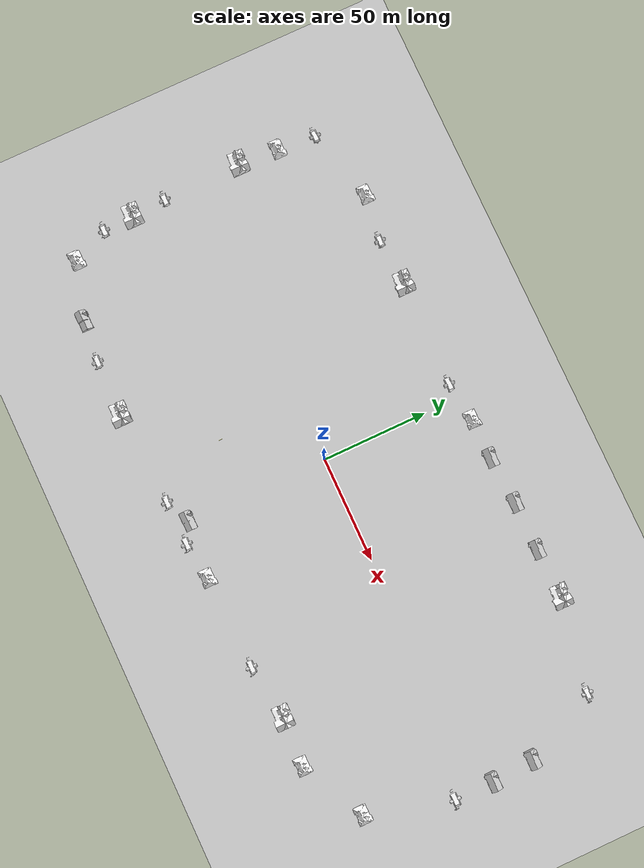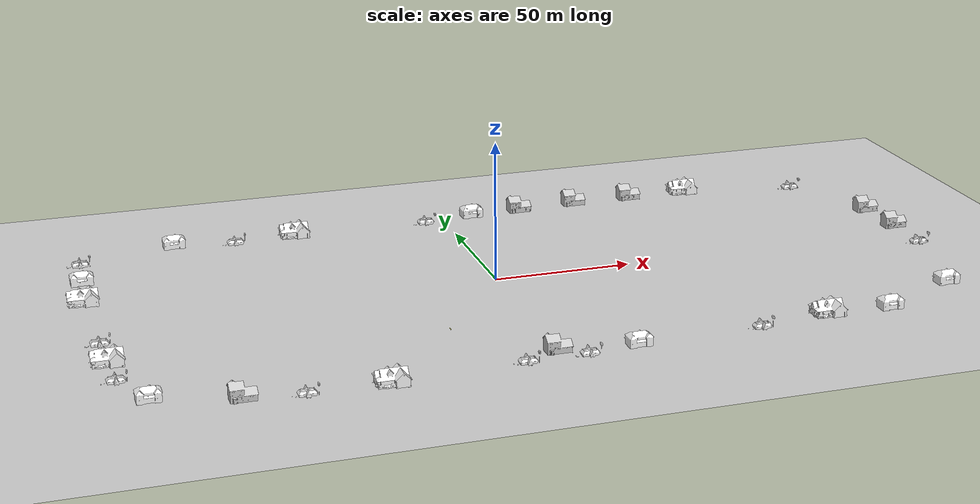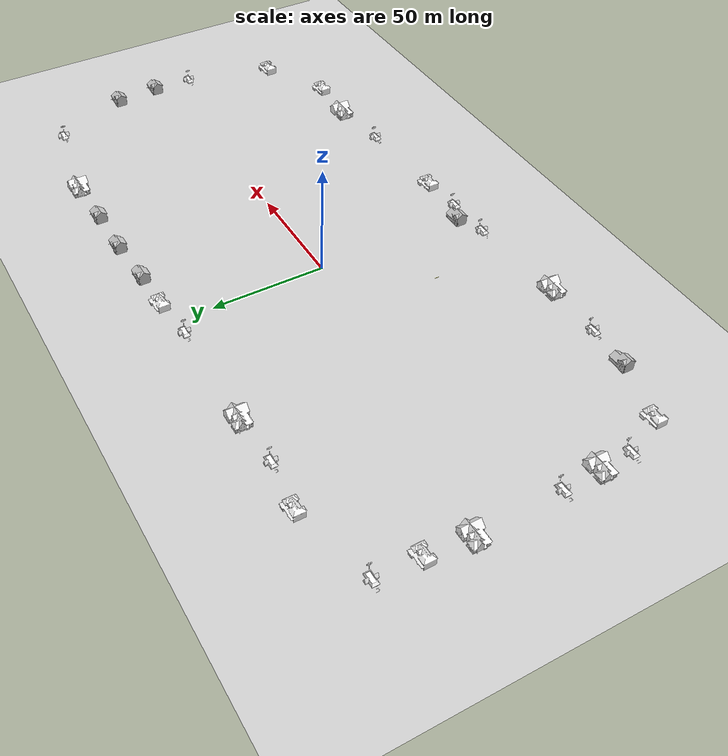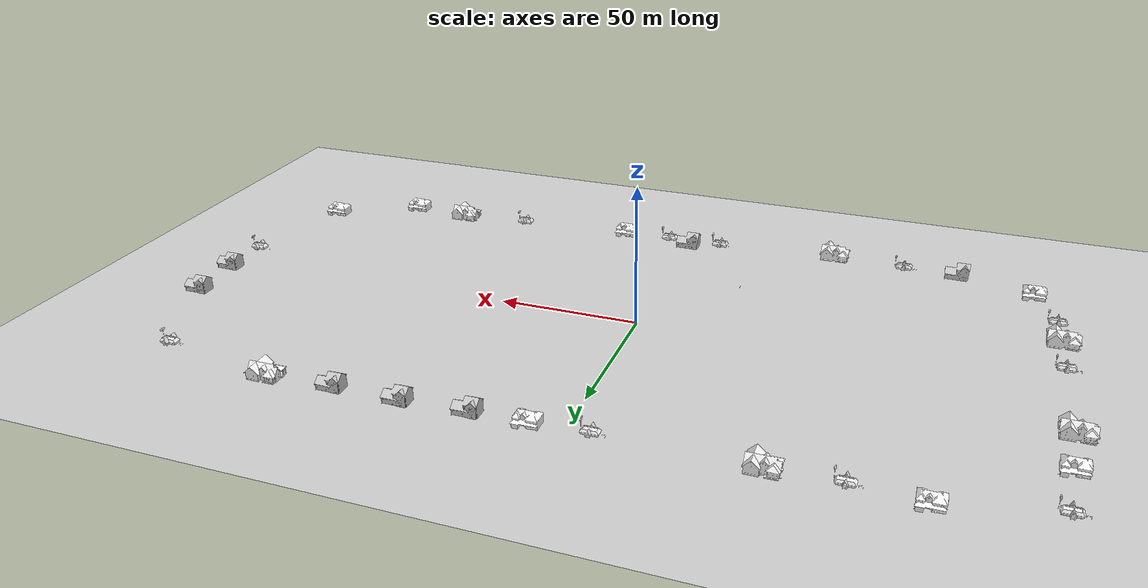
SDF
<sdf version="1.6">
 <world name="default">
  <light name="sun" type="directional">
   <pose>0 0 10 0 -0 0</pose>
   <diffuse>0.8 0.8 0.8 1</diffuse>
   <specular>0.2 0.2 0.2 1</specular>
   <attenuation>
    <range>1000</range>
    <constant>0.9</constant>
    <linear>0.01</linear>
    <quadratic>0.001</quadratic>
   </attenuation>
   <direction>-0.5 0.1 -0.9</direction>
  </light>
  <model name="ground_plane">
   <static>1</static>
   <link name="link">
    <collision name="collision">
     <geometry><plane><normal>0 0 1</normal><size>100 100</size></plane></geometry>
     <surface><friction><ode><mu>100</mu><mu2>50</mu2></ode></friction></surface>
    </collision>
    <visual name="visual">
     <cast_shadows>0</cast_shadows>
     <geometry><plane><normal>0 0 1</normal><size>100 100</size></plane></geometry>
     <material>
      <script><uri>file://media/materials/scripts/gazebo.material</uri><name>Gazebo/Grey</name></script>
     </material>
    </visual>
    <velocity_decay><linear>0</linear><angular>0</angular></velocity_decay>
   </link>
  </model>
  <physics name="default_physics" default="0" type="ode">
   <max_step_size>0.001</max_step_size>
   <real_time_factor>1</real_time_factor>
   <real_time_update_rate>1000</real_time_update_rate>
  </physics>
  <scene><ambient>0.4 0.4 0.4 1</ambient><background>0.7 0.7 0.7 1</background><shadows>1</shadows></scene>
  <spherical_coordinates>
   <surface_model>EARTH_WGS84</surface_model>
   <latitude_deg>0</latitude_deg>
   <longitude_deg>0</longitude_deg>
   <elevation>0</elevation>
   <heading_deg>0</heading_deg>
  </spherical_coordinates>
  <model name="House 1">
   <static>1</static>
   <link name="link">
    <collision name="collision">
     <geometry><mesh><uri>model://house_1/meshes/house_1.dae</uri><scale>1 1 1</scale></mesh></geometry>
    </collision>
    <visual name="visual">
     <geometry><mesh><uri>model://house_1/meshes/house_1.dae</uri><scale>1 1 1</scale></mesh></geometry>
     <material>
      <script>
       <uri>model://house_1/materials/scripts</uri>
       <uri>model://house_1/materials/textures</uri>
       <name>House_1/Diffuse</name>
      </script>
      <shader type="normal_map_object_space"><normal_map>House_1_Normal.png</normal_map></shader>
     </material>
    </visual>
   </link>
   <pose>100.215 70.0862 0 0 -0 0</pose>
  </model>
  <model name="House 1_clone">
   <static>1</static>
   <link name="link">
    <collision name="collision">
     <geometry><mesh><uri>model://house_1/meshes/house_1.dae</uri><scale>1 1 1</scale></mesh></geometry>
    </collision>
    <visual name="visual">
     <geometry><mesh><uri>model://house_1/meshes/house_1.dae</uri><scale>1 1 1</scale></mesh></geometry>
     <material>
      <script>
       <uri>model://house_1/materials/scripts</uri>
       <uri>model://house_1/materials/textures</uri>
       <name>House_1/Diffuse</name>
      </script>
      <shader type="normal_map_object_space"><normal_map>House_1_Normal.png</normal_map></shader>
     </material>
    </visual>
   </link>
   <pose>-57.219 -75.1413 0 0 -0 0</pose>
  </model>
  <model name="House 1_clone_0">
   <static>1</static>
   <link name="link">
    <collision name="collision">
     <geometry><mesh><uri>model://house_1/meshes/house_1.dae</uri><scale>1 1 1</scale></mesh></geometry>
    </collision>
    <visual name="visual">
     <geometry><mesh><uri>model://house_1/meshes/house_1.dae</uri><scale>1 1 1</scale></mesh></geometry>
     <material>
      <script>
       <uri>model://house_1/materials/scripts</uri>
       <uri>model://house_1/materials/textures</uri>
       <name>House_1/Diffuse</name>
      </script>
      <shader type="normal_map_object_space"><normal_map>House_1_Normal.png</normal_map></shader>
     </material>
    </visual>
   </link>
   <pose>-58.0915 66.7683 0 0 -0 0</pose>
  </model>
  <model name="House 1_clone_1">
   <static>1</static>
   <link name="link">
    <collision name="collision">
     <geometry><mesh><uri>model://house_1/meshes/house_1.dae</uri><scale>1 1 1</scale></mesh></geometry>
    </collision>
    <visual name="visual">
     <geometry><mesh><uri>model://house_1/meshes/house_1.dae</uri><scale>1 1 1</scale></mesh></geometry>
     <material>
      <script>
       <uri>model://house_1/materials/scripts</uri>
       <uri>model://house_1/materials/textures</uri>
       <name>House_1/Diffuse</name>
      </script>
      <shader type="normal_map_object_space"><normal_map>House_1_Normal.png</normal_map></shader>
     </material>
    </visual>
   </link>
   <pose>96.5856 -64.8908 0 0 -0 0</pose>
  </model>
  <model name="House 2">
   <static>1</static>
   <link name="link">
    <collision name="collision">
     <geometry><mesh><uri>model://house_2/meshes/house_2.dae</uri><scale>1 1 1</scale></mesh></geometry>
    </collision>
    <visual name="visual">
     <geometry><mesh><uri>model://house_2/meshes/house_2.dae</uri><scale>1 1 1</scale></mesh></geometry>
     <material>
      <script>
       <uri>model://house_2/materials/scripts</uri>
       <uri>model://house_2/materials/textures</uri>
       <name>House_2/Diffuse</name>
      </script>
     </material>
    </visual>
   </link>
   <pose>25.7164 -70.1835 0 0 -0 0</pose>
  </model>
  <model name="House 2_0">
   <static>1</static>
   <link name="link">
    <collision name="collision">
     <geometry><mesh><uri>model://house_2/meshes/house_2.dae</uri><scale>1 1 1</scale></mesh></geometry>
    </collision>
    <visual name="visual">
     <geometry><mesh><uri>model://house_2/meshes/house_2.dae</uri><scale>1 1 1</scale></mesh></geometry>
     <material>
      <script>
       <uri>model://house_2/materials/scripts</uri>
       <uri>model://house_2/materials/textures</uri>
       <name>House_2/Diffuse</name>
      </script>
     </material>
    </visual>
   </link>
   <pose>10.8483 67.6852 0 0 -0 0</pose>
  </model>
  <model name="House 2_1">
   <static>1</static>
   <link name="link">
    <collision name="collision">
     <geometry><mesh><uri>model://house_2/meshes/house_2.dae</uri><scale>1 1 1</scale></mesh></geometry>
    </collision>
    <visual name="visual">
     <geometry><mesh><uri>model://house_2/meshes/house_2.dae</uri><scale>1 1 1</scale></mesh></geometry>
     <material>
      <script>
       <uri>model://house_2/materials/scripts</uri>
       <uri>model://house_2/materials/textures</uri>
       <name>House_2/Diffuse</name>
      </script>
     </material>
    </visual>
   </link>
   <pose>-103.626 67.9182 0 0 -0 0</pose>
  </model>
  <model name="House 2_2">
   <static>1</static>
   <link name="link">
    <collision name="collision">
     <geometry><mesh><uri>model://house_2/meshes/house_2.dae</uri><scale>1 1 1</scale></mesh></geometry>
    </collision>
    <visual name="visual">
     <geometry><mesh><uri>model://house_2/meshes/house_2.dae</uri><scale>1 1 1</scale></mesh></geometry>
     <material>
      <script>
       <uri>model://house_2/materials/scripts</uri>
       <uri>model://house_2/materials/textures</uri>
       <name>House_2/Diffuse</name>
      </script>
     </material>
    </visual>
   </link>
   <pose>118.712 -66.3326 0 0 -0 0</pose>
  </model>
  <model name="House 3">
   <static>1</static>
   <link name="link">
    <collision name="collision">
     <geometry><mesh><uri>model://house_3/meshes/house_3.dae</uri><scale>1 1 1</scale></mesh></geometry>
    </collision>
    <visual name="visual">
     <geometry><mesh><uri>model://house_3/meshes/house_3.dae</uri><scale>1 1 1</scale></mesh></geometry>
     <material>
      <script>
       <uri>model://house_3/materials/scripts</uri>
       <uri>model://house_3/materials/textures</uri>
       <name>House_3/Diffuse</name>
      </script>
     </material>
    </visual>
   </link>
   <pose>-102.823 -72.6257 0 0 -0 0</pose>
  </model>
  <model name="House 3_0">
   <static>1</static>
   <link name="link">
    <collision name="collision">
     <geometry><mesh><uri>model://house_3/meshes/house_3.dae</uri><scale>1 1 1</scale></mesh></geometry>
    </collision>
    <visual name="visual">
     <geometry><mesh><uri>model://house_3/meshes/house_3.dae</uri><scale>1 1 1</scale></mesh></geometry>
     <material>
      <script>
       <uri>model://house_3/materials/scripts</uri>
       <uri>model://house_3/materials/textures</uri>
       <name>House_3/Diffuse</name>
      </script>
     </material>
    </visual>
   </link>
   <pose>54.0057 69.4568 0 0 -0 0</pose>
  </model>
  <model name="House 3_1">
   <static>1</static>
   <link name="link">
    <collision name="collision">
     <geometry><mesh><uri>model://house_3/meshes/house_3.dae</uri><scale>1 1 1</scale></mesh></geometry>
    </collision>
    <visual name="visual">
     <geometry><mesh><uri>model://house_3/meshes/house_3.dae</uri><scale>1 1 1</scale></mesh></geometry>
     <material>
      <script>
       <uri>model://house_3/materials/scripts</uri>
       <uri>model://house_3/materials/textures</uri>
       <name>House_3/Diffuse</name>
      </script>
     </material>
    </visual>
   </link>
   <pose>77.1353 69.4513 0 0 -0 0</pose>
  </model>
  <model name="House 3_2">
   <static>1</static>
   <link name="link">
    <collision name="collision">
     <geometry><mesh><uri>model://house_3/meshes/house_3.dae</uri><scale>1 1 1</scale></mesh></geometry>
    </collision>
    <visual name="visual">
     <geometry><mesh><uri>model://house_3/meshes/house_3.dae</uri><scale>1 1 1</scale></mesh></geometry>
     <material>
      <script>
       <uri>model://house_3/materials/scripts</uri>
       <uri>model://house_3/materials/textures</uri>
       <name>House_3/Diffuse</name>
      </script>
     </material>
    </visual>
   </link>
   <pose>31.1936 68.1952 0 0 -0 0</pose>
  </model>
  <model name="House 3_3">
   <static>1</static>
   <link name="link">
    <collision name="collision">
     <geometry><mesh><uri>model://house_3/meshes/house_3.dae</uri><scale>1 1 1</scale></mesh></geometry>
    </collision>
    <visual name="visual">
     <geometry><mesh><uri>model://house_3/meshes/house_3.dae</uri><scale>1 1 1</scale></mesh></geometry>
     <material>
      <script>
       <uri>model://house_3/materials/scripts</uri>
       <uri>model://house_3/materials/textures</uri>
       <name>House_3/Diffuse</name>
      </script>
     </material>
    </visual>
   </link>
   <pose>159.929 27.5324 0 0 -0 0</pose>
  </model>
  <model name="House 3_4">
   <static>1</static>
   <link name="link">
    <collision name="collision">
     <geometry><mesh><uri>model://house_3/meshes/house_3.dae</uri><scale>1 1 1</scale></mesh></geometry>
    </collision>
    <visual name="visual">
     <geometry><mesh><uri>model://house_3/meshes/house_3.dae</uri><scale>1 1 1</scale></mesh></geometry>
     <material>
      <script>
       <uri>model://house_3/materials/scripts</uri>
       <uri>model://house_3/materials/textures</uri>
       <name>House_3/Diffuse</name>
      </script>
     </material>
    </visual>
   </link>
   <pose>161.311 7.59302 0 0 -0 0</pose>
  </model>
  <model name="House 3_5">
   <static>1</static>
   <link name="link">
    <collision name="collision">
     <geometry><mesh><uri>model://house_3/meshes/house_3.dae</uri><scale>1 1 1</scale></mesh></geometry>
    </collision>
    <visual name="visual">
     <geometry><mesh><uri>model://house_3/meshes/house_3.dae</uri><scale>1 1 1</scale></mesh></geometry>
     <material>
      <script>
       <uri>model://house_3/materials/scripts</uri>
       <uri>model://house_3/materials/textures</uri>
       <name>House_3/Diffuse</name>
      </script>
     </material>
    </visual>
   </link>
   <pose>-0.027227 -67.0752 0 0 -0 0</pose>
  </model>
  <model name="drc_practice_yellow_parking_block">
   <static>1</static>
   <link name="link">
    <visual name="visual">
     <geometry>
      <mesh><uri>model://drc_practice_yellow_parking_block/meshes/block.dae</uri><scale>1 1 1</scale></mesh>
     </geometry>
    </visual>
    <collision name="collision">
     <geometry>
      <mesh><uri>model://drc_practice_yellow_parking_block/meshes/block.dae</uri><scale>1 1 1</scale></mesh>
     </geometry>
    </collision>
   </link>
   <pose>-27.9456 -38.7615 0 0 -0 0</pose>
  </model>
  <model name="Fast Food">
   <static>1</static>
   <link name="link">
    <collision name="collision">
     <geometry><mesh><uri>model://fast_food/meshes/fast_food.dae</uri><scale>1 1 1</scale></mesh></geometry>
    </collision>
    <visual name="visual">
     <geometry><mesh><uri>model://fast_food/meshes/fast_food.dae</uri><scale>1 1 1</scale></mesh></geometry>
     <material>
      <script>
       <uri>model://fast_food/materials/scripts</uri>
       <uri>model://fast_food/materials/textures</uri>
       <name>FastFood/Diffuse</name>
      </script>
     </material>
    </visual>
   </link>
   <pose>-83.8008 -74.8423 0 0 -0 0</pose>
  </model>
  <model name="Fast Food_0">
   <static>1</static>
   <link name="link">
    <collision name="collision">
     <geometry><mesh><uri>model://fast_food/meshes/fast_food.dae</uri><scale>1 1 1</scale></mesh></geometry>
    </collision>
    <visual name="visual">
     <geometry><mesh><uri>model://fast_food/meshes/fast_food.dae</uri><scale>1 1 1</scale></mesh></geometry>
     <material>
      <script>
       <uri>model://fast_food/materials/scripts</uri>
       <uri>model://fast_food/materials/textures</uri>
       <name>FastFood/Diffuse</name>
      </script>
     </material>
    </visual>
   </link>
   <pose>-80.6693 65.3517 0 0 -0 0</pose>
  </model>
  <model name="Fast Food_1">
   <static>1</static>
   <link name="link">
    <collision name="collision">
     <geometry><mesh><uri>model://fast_food/meshes/fast_food.dae</uri><scale>1 1 1</scale></mesh></geometry>
    </collision>
    <visual name="visual">
     <geometry><mesh><uri>model://fast_food/meshes/fast_food.dae</uri><scale>1 1 1</scale></mesh></geometry>
     <material>
      <script>
       <uri>model://fast_food/materials/scripts</uri>
       <uri>model://fast_food/materials/textures</uri>
       <name>FastFood/Diffuse</name>
      </script>
     </material>
    </visual>
   </link>
   <pose>-7.33115 65.7729 0 0 -0 0</pose>
  </model>
  <model name="Fast Food_2">
   <static>1</static>
   <link name="link">
    <collision name="collision">
     <geometry><mesh><uri>model://fast_food/meshes/fast_food.dae</uri><scale>1 1 1</scale></mesh></geometry>
    </collision>
    <visual name="visual">
     <geometry><mesh><uri>model://fast_food/meshes/fast_food.dae</uri><scale>1 1 1</scale></mesh></geometry>
     <material>
      <script>
       <uri>model://fast_food/materials/scripts</uri>
       <uri>model://fast_food/materials/textures</uri>
       <name>FastFood/Diffuse</name>
      </script>
     </material>
    </visual>
   </link>
   <pose>143.929 62.1585 0 0 -0 0</pose>
  </model>
  <model name="Fast Food_3">
   <static>1</static>
   <link name="link">
    <collision name="collision">
     <geometry><mesh><uri>model://fast_food/meshes/fast_food.dae</uri><scale>1 1 1</scale></mesh></geometry>
    </collision>
    <visual name="visual">
     <geometry><mesh><uri>model://fast_food/meshes/fast_food.dae</uri><scale>1 1 1</scale></mesh></geometry>
     <material>
      <script>
       <uri>model://fast_food/materials/scripts</uri>
       <uri>model://fast_food/materials/textures</uri>
       <name>FastFood/Diffuse</name>
      </script>
     </material>
    </visual>
   </link>
   <pose>161.341 -10.9795 0 0 -0 0</pose>
  </model>
  <model name="Fast Food_4">
   <static>1</static>
   <link name="link">
    <collision name="collision">
     <geometry><mesh><uri>model://fast_food/meshes/fast_food.dae</uri><scale>1 1 1</scale></mesh></geometry>
    </collision>
    <visual name="visual">
     <geometry><mesh><uri>model://fast_food/meshes/fast_food.dae</uri><scale>1 1 1</scale></mesh></geometry>
     <material>
      <script>
       <uri>model://fast_food/materials/scripts</uri>
       <uri>model://fast_food/materials/textures</uri>
       <name>FastFood/Diffuse</name>
      </script>
     </material>
    </visual>
   </link>
   <pose>70.7718 -68.5032 0 0 -0 0</pose>
  </model>
  <model name="Fast Food_5">
   <static>1</static>
   <link name="link">
    <collision name="collision">
     <geometry><mesh><uri>model://fast_food/meshes/fast_food.dae</uri><scale>1 1 1</scale></mesh></geometry>
    </collision>
    <visual name="visual">
     <geometry><mesh><uri>model://fast_food/meshes/fast_food.dae</uri><scale>1 1 1</scale></mesh></geometry>
     <material>
      <script>
       <uri>model://fast_food/materials/scripts</uri>
       <uri>model://fast_food/materials/textures</uri>
       <name>FastFood/Diffuse</name>
      </script>
     </material>
    </visual>
   </link>
   <pose>8.7854 -72.1425 0 0 -0 0</pose>
  </model>
  <model name="Fast Food_6">
   <static>1</static>
   <link name="link">
    <collision name="collision">
     <geometry><mesh><uri>model://fast_food/meshes/fast_food.dae</uri><scale>1 1 1</scale></mesh></geometry>
    </collision>
    <visual name="visual">
     <geometry><mesh><uri>model://fast_food/meshes/fast_food.dae</uri><scale>1 1 1</scale></mesh></geometry>
     <material>
      <script>
       <uri>model://fast_food/materials/scripts</uri>
       <uri>model://fast_food/materials/textures</uri>
       <name>FastFood/Diffuse</name>
      </script>
     </material>
    </visual>
   </link>
   <pose>-12.1512 -72.4318 0 0 -0 0</pose>
  </model>
  <model name="House 2_2_clone">
   <static>1</static>
   <link name="link">
    <collision name="collision">
     <geometry><mesh><uri>model://house_2/meshes/house_2.dae</uri><scale>1 1 1</scale></mesh></geometry>
    </collision>
    <visual name="visual">
     <geometry><mesh><uri>model://house_2/meshes/house_2.dae</uri><scale>1 1 1</scale></mesh></geometry>
     <material>
      <script>
       <uri>model://house_2/materials/scripts</uri>
       <uri>model://house_2/materials/textures</uri>
       <name>House_2/Diffuse</name>
      </script>
     </material>
    </visual>
   </link>
   <pose>149.096 -51.1721 0 0 -0 0</pose>
  </model>
  <model name="House 2_2_clone_0">
   <static>1</static>
   <link name="link">
    <collision name="collision">
     <geometry><mesh><uri>model://house_2/meshes/house_2.dae</uri><scale>1 1 1</scale></mesh></geometry>
    </collision>
    <visual name="visual">
     <geometry><mesh><uri>model://house_2/meshes/house_2.dae</uri><scale>1 1 1</scale></mesh></geometry>
     <material>
      <script>
       <uri>model://house_2/materials/scripts</uri>
       <uri>model://house_2/materials/textures</uri>
       <name>House_2/Diffuse</name>
      </script>
     </material>
    </visual>
   </link>
   <pose>-139.971 40.1797 0 0 -0 0</pose>
  </model>
  <model name="House 1_clone_clone">
   <static>1</static>
   <link name="link">
    <collision name="collision">
     <geometry><mesh><uri>model://house_1/meshes/house_1.dae</uri><scale>1 1 1</scale></mesh></geometry>
    </collision>
    <visual name="visual">
     <geometry><mesh><uri>model://house_1/meshes/house_1.dae</uri><scale>1 1 1</scale></mesh></geometry>
     <material>
      <script>
       <uri>model://house_1/materials/scripts</uri>
       <uri>model://house_1/materials/textures</uri>
       <name>House_1/Diffuse</name>
      </script>
      <shader type="normal_map_object_space"><normal_map>House_1_Normal.png</normal_map></shader>
     </material>
    </visual>
   </link>
   <pose>-140.757 21.5327 0 0 -0 0</pose>
  </model>
  <model name="Fast Food_0_clone">
   <static>1</static>
   <link name="link">
    <collision name="collision">
     <geometry><mesh><uri>model://fast_food/meshes/fast_food.dae</uri><scale>1 1 1</scale></mesh></geometry>
    </collision>
    <visual name="visual">
     <geometry><mesh><uri>model://fast_food/meshes/fast_food.dae</uri><scale>1 1 1</scale></mesh></geometry>
     <material>
      <script>
       <uri>model://fast_food/materials/scripts</uri>
       <uri>model://fast_food/materials/textures</uri>
       <name>FastFood/Diffuse</name>
      </script>
     </material>
    </visual>
   </link>
   <pose>-138 59 0 0 -0 0</pose>
  </model>
  <model name="Fast Food_clone">
   <static>1</static>
   <link name="link">
    <collision name="collision">
     <geometry><mesh><uri>model://fast_food/meshes/fast_food.dae</uri><scale>1 1 1</scale></mesh></geometry>
    </collision>
    <visual name="visual">
     <geometry><mesh><uri>model://fast_food/meshes/fast_food.dae</uri><scale>1 1 1</scale></mesh></geometry>
     <material>
      <script>
       <uri>model://fast_food/materials/scripts</uri>
       <uri>model://fast_food/materials/textures</uri>
       <name>FastFood/Diffuse</name>
      </script>
     </material>
    </visual>
   </link>
   <pose>-139.644 -16.2639 0 0 -0 0</pose>
  </model>
  <model name="Fast Food_clone_0">
   <static>1</static>
   <link name="link">
    <collision name="collision">
     <geometry><mesh><uri>model://fast_food/meshes/fast_food.dae</uri><scale>1 1 1</scale></mesh></geometry>
    </collision>
    <visual name="visual">
     <geometry><mesh><uri>model://fast_food/meshes/fast_food.dae</uri><scale>1 1 1</scale></mesh></geometry>
     <material>
      <script>
       <uri>model://fast_food/materials/scripts</uri>
       <uri>model://fast_food/materials/textures</uri>
       <name>FastFood/Diffuse</name>
      </script>
     </material>
    </visual>
   </link>
   <pose>-138.142 -47.4333 0 0 -0 0</pose>
  </model>
  <model name="House 1_clone_clone_0">
   <static>1</static>
   <link name="link">
    <collision name="collision">
     <geometry><mesh><uri>model://house_1/meshes/house_1.dae</uri><scale>1 1 1</scale></mesh></geometry>
    </collision>
    <visual name="visual">
     <geometry><mesh><uri>model://house_1/meshes/house_1.dae</uri><scale>1 1 1</scale></mesh></geometry>
     <material>
      <script>
       <uri>model://house_1/materials/scripts</uri>
       <uri>model://house_1/materials/textures</uri>
       <name>House_1/Diffuse</name>
      </script>
      <shader type="normal_map_object_space"><normal_map>House_1_Normal.png</normal_map></shader>
     </material>
    </visual>
   </link>
   <pose>-138.867 -32.7263 0 0 -0 0</pose>
  </model>
  <model name="House 2_clone">
   <static>1</static>
   <link name="link">
    <collision name="collision">
     <geometry><mesh><uri>model://house_2/meshes/house_2.dae</uri><scale>1 1 1</scale></mesh></geometry>
    </collision>
    <visual name="visual">
     <geometry><mesh><uri>model://house_2/meshes/house_2.dae</uri><scale>1 1 1</scale></mesh></geometry>
     <material>
      <script>
       <uri>model://house_2/materials/scripts</uri>
       <uri>model://house_2/materials/textures</uri>
       <name>House_2/Diffuse</name>
      </script>
     </material>
    </visual>
   </link>
   <pose>-131.068 -64.7735 0 0 -0 0</pose>
  </model>
 </world>
</sdf>
